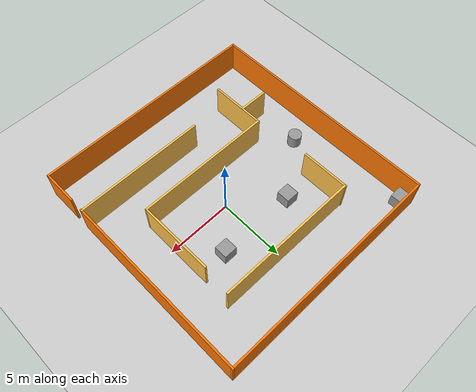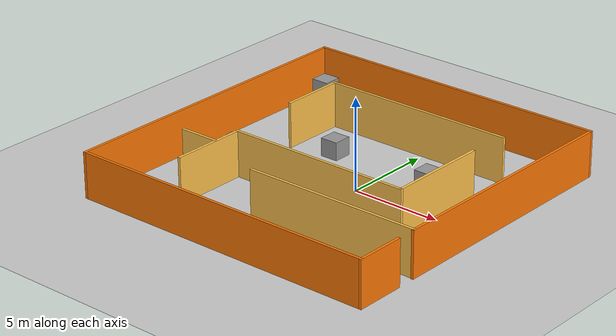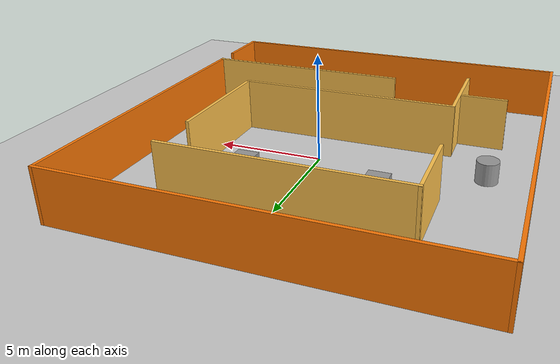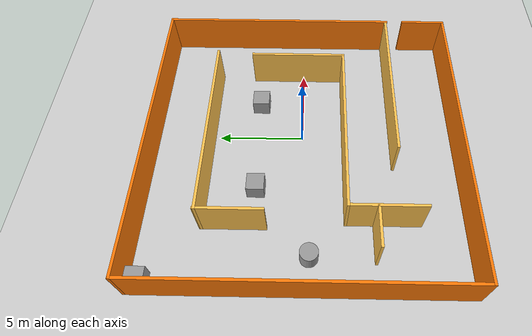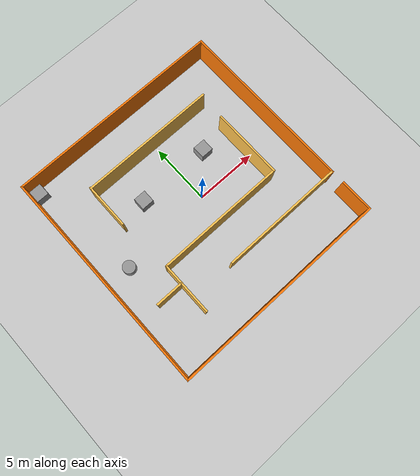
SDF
<sdf version="1.7">
 <world name="default">
  <light name="sun" type="directional">
   <pose>0 0 10 0 -0 0</pose>
   <diffuse>0.8 0.8 0.8 1</diffuse>
   <specular>0.2 0.2 0.2 1</specular>
   <attenuation>
    <range>1000</range>
    <constant>0.9</constant>
    <linear>0.01</linear>
    <quadratic>0.001</quadratic>
   </attenuation>
   <direction>-0.5 0.1 -0.9</direction>
   <spot><inner_angle>0</inner_angle><outer_angle>0</outer_angle><falloff>0</falloff></spot>
  </light>
  <model name="ground_plane">
   <static>1</static>
   <link name="link">
    <collision name="collision">
     <geometry><plane><normal>0 0 1</normal><size>100 100</size></plane></geometry>
     <surface>
      <contact><collide_bitmask>65535</collide_bitmask></contact>
      <friction><ode><mu>100</mu><mu2>50</mu2></ode></friction>
     </surface>
    </collision>
    <visual name="visual">
     <cast_shadows>0</cast_shadows>
     <geometry><plane><normal>0 0 1</normal><size>100 100</size></plane></geometry>
     <material>
      <script><uri>file://media/materials/scripts/gazebo.material</uri><name>Gazebo/Grey</name></script>
     </material>
    </visual>
   </link>
  </model>
  <gravity>0 0 -9.8</gravity>
  <magnetic_field>6e-06 2.3e-05 -4.2e-05</magnetic_field>
  <atmosphere type="adiabatic"/>
  <physics type="ode">
   <max_step_size>0.001</max_step_size>
   <real_time_factor>1</real_time_factor>
   <real_time_update_rate>1000</real_time_update_rate>
  </physics>
  <scene><ambient>0.4 0.4 0.4 1</ambient><background>0.7 0.7 0.7 1</background><shadows>1</shadows></scene>
  <spherical_coordinates>
   <surface_model>EARTH_WGS84</surface_model>
   <latitude_deg>0</latitude_deg>
   <longitude_deg>0</longitude_deg>
   <elevation>0</elevation>
   <heading_deg>0</heading_deg>
  </spherical_coordinates>
  <model name="mab_model">
   <pose>-0.845 -0.146215 0 0 -0 0</pose>
   <link name="Wall_0">
    <collision name="Wall_0_Collision">
     <geometry><box><size>10 0.15 2.5</size></box></geometry>
     <pose>0 0 1.25 0 -0 0</pose>
    </collision>
    <visual name="Wall_0_Visual">
     <pose>0 0 1.25 0 -0 0</pose>
     <geometry><box><size>10 0.15 2.5</size></box></geometry>
     <material>
      <script><uri>file://media/materials/scripts/gazebo.material</uri><name>Gazebo/Grey</name></script>
      <ambient>1 0.764706 0.305882 1</ambient>
     </material>
     <meta><layer>0</layer></meta>
    </visual>
    <pose>3.75 -5.17396 0 0 -0 0</pose>
   </link>
   <link name="Wall_1">
    <collision name="Wall_1_Collision">
     <geometry><box><size>14.2864 0.15 2.5</size></box></geometry>
     <pose>0 0 1.25 0 -0 0</pose>
    </collision>
    <visual name="Wall_1_Visual">
     <pose>0 0 1.25 0 -0 0</pose>
     <geometry><box><size>14.2864 0.15 2.5</size></box></geometry>
     <material>
      <script><uri>file://media/materials/scripts/gazebo.material</uri><name>Gazebo/Grey</name></script>
      <ambient>0.996078 0.47451 0.0196078 1</ambient>
     </material>
     <meta><layer>0</layer></meta>
    </visual>
    <pose>8.675 1.848 0 0 -0 1.5708</pose>
   </link>
   <link name="Wall_11">
    <collision name="Wall_11_Collision">
     <geometry><box><size>11 0.15 2.5</size></box></geometry>
     <pose>0 0 1.25 0 -0 0</pose>
    </collision>
    <visual name="Wall_11_Visual">
     <pose>0 0 1.25 0 -0 0</pose>
     <geometry><box><size>11 0.15 2.5</size></box></geometry>
     <material>
      <script><uri>file://media/materials/scripts/gazebo.material</uri><name>Gazebo/Grey</name></script>
      <ambient>1 0.764706 0.305882 1</ambient>
     </material>
     <meta><layer>0</layer></meta>
    </visual>
    <pose>0.363325 5.51996 0 0 -0 3.14159</pose>
   </link>
   <link name="Wall_12">
    <collision name="Wall_12_Collision">
     <geometry><box><size>3.69487 0.15 2.5</size></box></geometry>
     <pose>0 0 1.25 0 -0 0</pose>
    </collision>
    <visual name="Wall_12_Visual">
     <pose>0 0 1.25 0 -0 0</pose>
     <geometry><box><size>3.69487 0.15 2.5</size></box></geometry>
     <material>
      <script><uri>file://media/materials/scripts/gazebo.material</uri><name>Gazebo/Grey</name></script>
      <ambient>1 0.764706 0.305882 1</ambient>
     </material>
     <meta><layer>0</layer></meta>
    </visual>
    <pose>-5.06168 3.79379 0 0 -0 -1.5708</pose>
   </link>
   <link name="Wall_14">
    <collision name="Wall_14_Collision">
     <geometry><box><size>5.75 0.15 2.5</size></box></geometry>
     <pose>0 0 1.25 0 -0 0</pose>
    </collision>
    <visual name="Wall_14_Visual">
     <pose>0 0 1.25 0 -0 0</pose>
     <geometry><box><size>5.75 0.15 2.5</size></box></geometry>
     <material>
      <script><uri>file://media/materials/scripts/gazebo.material</uri><name>Gazebo/Grey</name></script>
      <ambient>1 0.764706 0.305882 1</ambient>
     </material>
     <meta><layer>0</layer></meta>
    </visual>
    <pose>5.60328 0.499424 0 0 -0 -1.5708</pose>
   </link>
   <link name="Wall_15">
    <collision name="Wall_15_Collision">
     <geometry><box><size>10.5 0.15 2.5</size></box></geometry>
     <pose>0 0 1.25 0 -0 0</pose>
    </collision>
    <visual name="Wall_15_Visual">
     <pose>0 0 1.25 0 -0 0</pose>
     <geometry><box><size>10.5 0.15 2.5</size></box></geometry>
     <material>
      <script><uri>file://media/materials/scripts/gazebo.material</uri><name>Gazebo/Grey</name></script>
      <ambient>1 0.764706 0.305882 1</ambient>
     </material>
     <meta><layer>0</layer></meta>
    </visual>
    <pose>0.42828 -2.30058 0 0 -0 3.14159</pose>
   </link>
   <link name="Wall_16">
    <collision name="Wall_16_Collision">
     <geometry><box><size>4.25 0.15 2.5</size></box></geometry>
     <pose>0 0 1.25 0 -0 0</pose>
    </collision>
    <visual name="Wall_16_Visual">
     <pose>0 0 1.25 0 -0 0</pose>
     <geometry><box><size>4.25 0.15 2.5</size></box></geometry>
     <material>
      <script><uri>file://media/materials/scripts/gazebo.material</uri><name>Gazebo/Grey</name></script>
      <ambient>1 0.764706 0.305882 1</ambient>
     </material>
     <meta><layer>0</layer></meta>
    </visual>
    <pose>-4.74672 -4.35058 0 0 -0 -1.5708</pose>
   </link>
   <link name="Wall_3">
    <collision name="Wall_3_Collision">
     <geometry><box><size>17.5 0.15 2.5</size></box></geometry>
     <pose>0 0 1.25 0 -0 0</pose>
    </collision>
    <visual name="Wall_3_Visual">
     <pose>0 0 1.25 0 -0 0</pose>
     <geometry><box><size>17.5 0.15 2.5</size></box></geometry>
     <material>
      <script><uri>file://media/materials/scripts/gazebo.material</uri><name>Gazebo/Grey</name></script>
      <ambient>0.996078 0.47451 0.0196078 1</ambient>
     </material>
     <meta><layer>0</layer></meta>
    </visual>
    <pose>0 8.91621 0 0 -0 3.14159</pose>
   </link>
   <link name="Wall_30">
    <collision name="Wall_30_Collision">
     <geometry><box><size>2.25 0.15 2.5</size></box></geometry>
     <pose>0 0 1.25 0 -0 0</pose>
    </collision>
    <visual name="Wall_30_Visual">
     <pose>0 0 1.25 0 -0 0</pose>
     <geometry><box><size>2.25 0.15 2.5</size></box></geometry>
     <material>
      <script><uri>file://media/materials/scripts/gazebo.material</uri><name>Gazebo/Grey</name></script>
      <ambient>1 0.764706 0.305882 1</ambient>
     </material>
     <meta><layer>0</layer></meta>
    </visual>
    <pose>-5.85549 -3.87106 0 0 -0 3.14159</pose>
   </link>
   <link name="Wall_4">
    <collision name="Wall_4_Collision">
     <geometry><box><size>17.9823 0.15 2.5</size></box></geometry>
     <pose>0 0 1.25 0 -0 0</pose>
    </collision>
    <visual name="Wall_4_Visual">
     <pose>0 0 1.25 0 -0 0</pose>
     <geometry><box><size>17.9823 0.15 2.5</size></box></geometry>
     <material>
      <script><uri>file://media/materials/scripts/gazebo.material</uri><name>Gazebo/Grey</name></script>
      <ambient>0.996078 0.47451 0.0196078 1</ambient>
     </material>
     <meta><layer>0</layer></meta>
    </visual>
    <pose>-8.675 8.8e-05 0 0 -0 -1.5708</pose>
   </link>
   <link name="Wall_5">
    <collision name="Wall_5_Collision">
     <geometry><box><size>17.5 0.15 2.5</size></box></geometry>
     <pose>0 0 1.25 0 -0 0</pose>
    </collision>
    <visual name="Wall_5_Visual">
     <pose>0 0 1.25 0 -0 0</pose>
     <geometry><box><size>17.5 0.15 2.5</size></box></geometry>
     <material>
      <script><uri>file://media/materials/scripts/gazebo.material</uri><name>Gazebo/Grey</name></script>
      <ambient>0.996078 0.47451 0.0196078 1</ambient>
     </material>
     <meta><layer>0</layer></meta>
    </visual>
    <pose>0 -8.91604 0 0 -0 0</pose>
   </link>
   <link name="Wall_6">
    <collision name="Wall_6_Collision">
     <geometry><box><size>2.73267 0.15 2.5</size></box></geometry>
     <pose>0 0 1.25 0 -0 0</pose>
    </collision>
    <visual name="Wall_6_Visual">
     <pose>0 0 1.25 0 -0 0</pose>
     <geometry><box><size>2.73267 0.15 2.5</size></box></geometry>
     <material>
      <script><uri>file://media/materials/scripts/gazebo.material</uri><name>Gazebo/Grey</name></script>
      <ambient>0.996078 0.47451 0.0196078 1</ambient>
     </material>
     <meta><layer>0</layer></meta>
    </visual>
    <pose>8.675 -7.62491 0 0 -0 1.5708</pose>
   </link>
   <static>1</static>
  </model>
  <model name="unit_box">
   <pose>-3.51127 2.56551 0.499995 1e-05 -0 0</pose>
   <link name="link">
    <inertial>
     <mass>1</mass>
     <inertia>
      <ixx>0.166667</ixx>
      <ixy>0</ixy>
      <ixz>0</ixz>
      <iyy>0.166667</iyy>
      <iyz>0</iyz>
      <izz>0.166667</izz>
     </inertia>
    </inertial>
    <collision name="collision"><geometry><box><size>1 1 1</size></box></geometry></collision>
    <visual name="visual">
     <geometry><box><size>1 1 1</size></box></geometry>
     <material>
      <script><name>Gazebo/Grey</name><uri>file://media/materials/scripts/gazebo.material</uri></script>
     </material>
    </visual>
   </link>
  </model>
  <model name="unit_box_0">
   <pose>-8.94384 8.19294 0.499995 1e-05 0 0.002187</pose>
   <link name="link">
    <inertial>
     <mass>1</mass>
     <inertia>
      <ixx>0.166667</ixx>
      <ixy>0</ixy>
      <ixz>0</ixz>
      <iyy>0.166667</iyy>
      <iyz>0</iyz>
      <izz>0.166667</izz>
     </inertia>
    </inertial>
    <collision name="collision"><geometry><box><size>1 1 1</size></box></geometry></collision>
    <visual name="visual">
     <geometry><box><size>1 1 1</size></box></geometry>
     <material>
      <script><name>Gazebo/Grey</name><uri>file://media/materials/scripts/gazebo.material</uri></script>
     </material>
    </visual>
   </link>
  </model>
  <model name="unit_cylinder">
   <pose>-7.54646 -0.481943 0.499993 -3e-06 -4e-06 -0</pose>
   <link name="link">
    <inertial>
     <mass>1</mass>
     <inertia><ixx>0.145833</ixx><ixy>0</ixy><ixz>0</ixz><iyy>0.145833</iyy><iyz>0</iyz><izz>0.125</izz></inertia>
    </inertial>
    <collision name="collision">
     <geometry><cylinder><radius>0.5</radius><length>1</length></cylinder></geometry>
    </collision>
    <visual name="visual">
     <geometry><cylinder><radius>0.5</radius><length>1</length></cylinder></geometry>
     <material>
      <script><name>Gazebo/Grey</name><uri>file://media/materials/scripts/gazebo.material</uri></script>
     </material>
    </visual>
   </link>
  </model>
  <model name="unit_box_1">
   <pose>2.47494 2.61257 0.5 0 -0 0</pose>
   <link name="link">
    <inertial>
     <mass>1</mass>
     <inertia>
      <ixx>0.166667</ixx>
      <ixy>0</ixy>
      <ixz>0</ixz>
      <iyy>0.166667</iyy>
      <iyz>0</iyz>
      <izz>0.166667</izz>
     </inertia>
    </inertial>
    <collision name="collision"><geometry><box><size>1 1 1</size></box></geometry></collision>
    <visual name="visual">
     <geometry><box><size>1 1 1</size></box></geometry>
     <material>
      <script><name>Gazebo/Grey</name><uri>file://media/materials/scripts/gazebo.material</uri></script>
     </material>
    </visual>
   </link>
  </model>
 </world>
</sdf>
